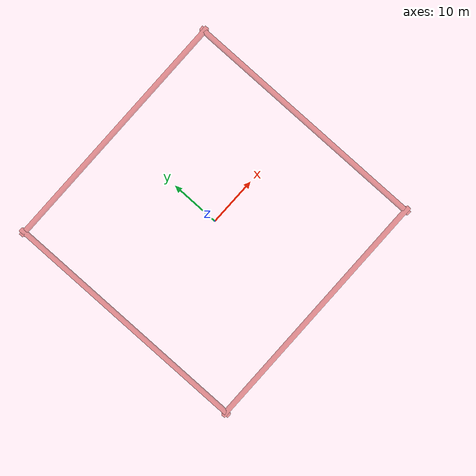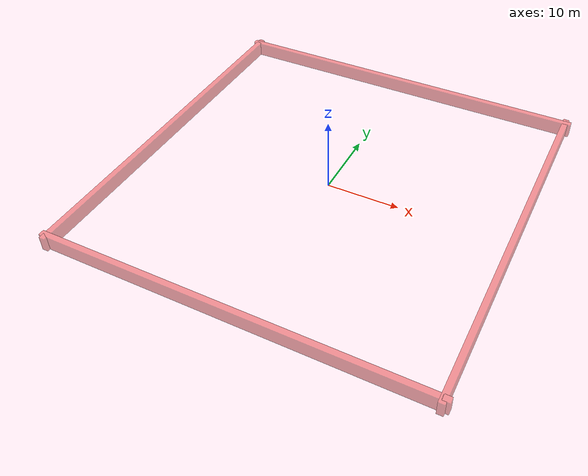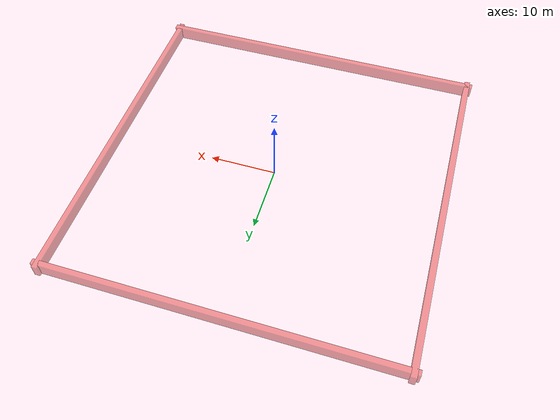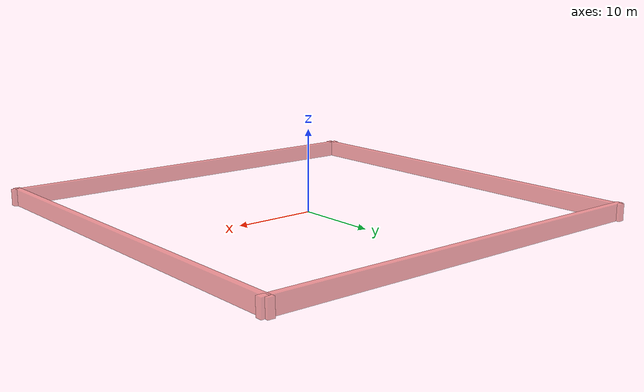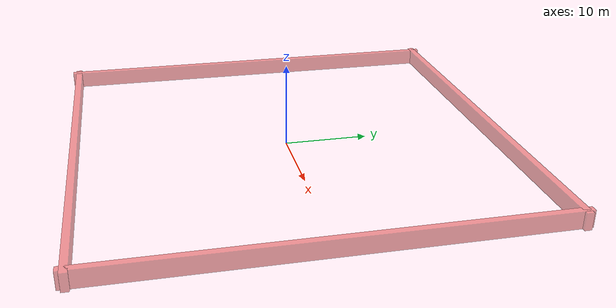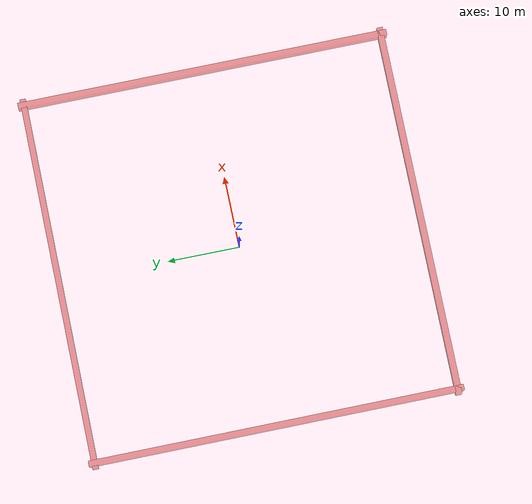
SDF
<sdf version="1.6">
 <world name="marsyard2021_map_only">
  <model_plugin_loading_timeout>600</model_plugin_loading_timeout>
  <physics type="ode">
   <max_step_size>0.001</max_step_size>
   <real_time_update_rate>1000</real_time_update_rate>
   <real_time_factor>1.0</real_time_factor>
   <gravity>0 0 -9.8</gravity>
  </physics>
  <scene>
   <ambient>0.45 0.45 0.45 1</ambient>
   <background>0.75 0.75 0.75 1</background>
   <shadows>true</shadows>
  </scene>
  <include><uri>model://sun</uri></include>
  <model name="boundary_walls">
   <static>true</static>
   <link name="north_wall">
    <pose>0 25.2 1.0 0 0 0</pose>
    <collision name="collision"><geometry><box><size>52 0.8 2.0</size></box></geometry></collision>
    <visual name="visual">
     <geometry><box><size>52 0.8 2.0</size></box></geometry>
     <material><ambient>0.85 0.15 0.15 0.50</ambient><diffuse>0.90 0.20 0.20 0.50</diffuse></material>
    </visual>
   </link>
   <link name="south_wall">
    <pose>0 -25.2 1.0 0 0 0</pose>
    <collision name="collision"><geometry><box><size>52 0.8 2.0</size></box></geometry></collision>
    <visual name="visual">
     <geometry><box><size>52 0.8 2.0</size></box></geometry>
     <material><ambient>0.85 0.15 0.15 0.50</ambient><diffuse>0.90 0.20 0.20 0.50</diffuse></material>
    </visual>
   </link>
   <link name="east_wall">
    <pose>25.2 0 1.0 0 0 0</pose>
    <collision name="collision"><geometry><box><size>0.8 52 2.0</size></box></geometry></collision>
    <visual name="visual">
     <geometry><box><size>0.8 52 2.0</size></box></geometry>
     <material><ambient>0.85 0.15 0.15 0.50</ambient><diffuse>0.90 0.20 0.20 0.50</diffuse></material>
    </visual>
   </link>
   <link name="west_wall">
    <pose>-25.2 0 1.0 0 0 0</pose>
    <collision name="collision"><geometry><box><size>0.8 52 2.0</size></box></geometry></collision>
    <visual name="visual">
     <geometry><box><size>0.8 52 2.0</size></box></geometry>
     <material><ambient>0.85 0.15 0.15 0.50</ambient><diffuse>0.90 0.20 0.20 0.50</diffuse></material>
    </visual>
   </link>
  </model>
 </world>
</sdf>
